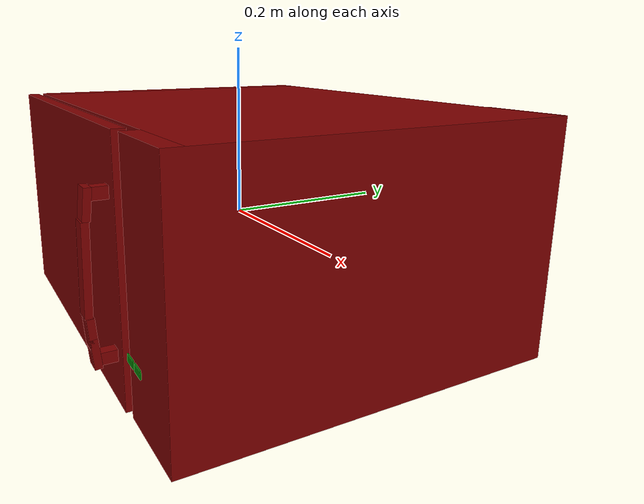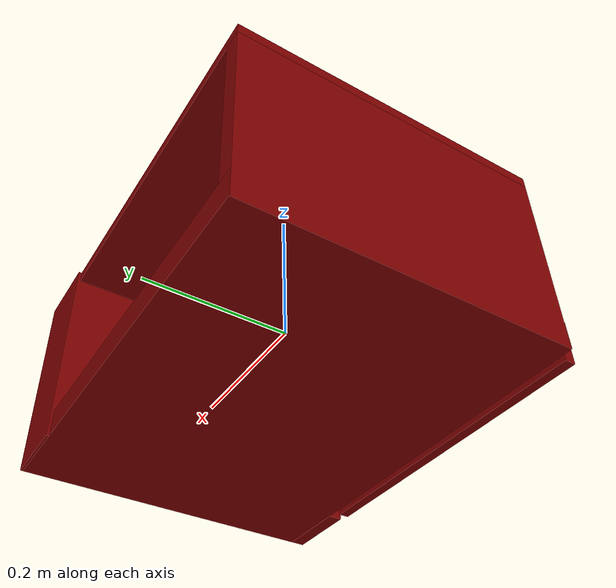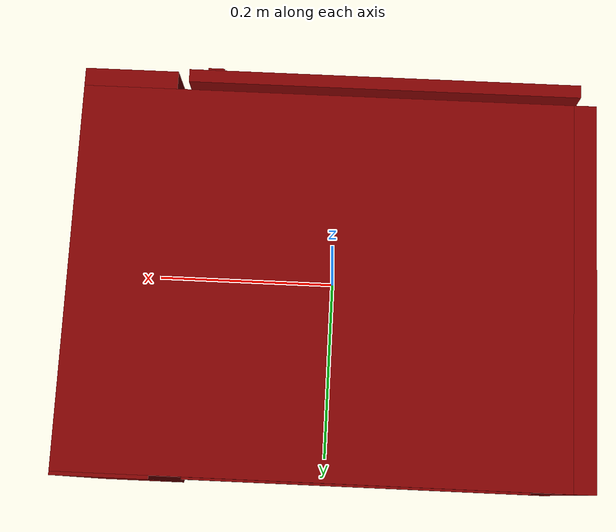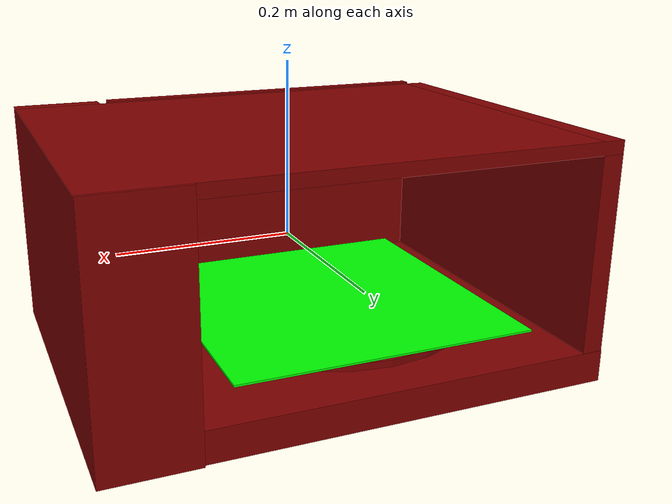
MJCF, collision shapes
<mujoco model="model">
  <compiler angle="radian"/>
  <asset>
    <mesh file="visuals/door.obj" name="door_vis"/>
    <mesh file="visuals/door_Clear.obj" name="door_Clear_vis"/>
    <mesh file="visuals/Body001.obj" name="Body001_vis"/>
    <mesh file="visuals/Disc001.obj" name="Disc001_vis"/>
    <texture file="visuals/T_BC001.png" name="Body001_material" type="2d"/>
    <material name="Body001_material" rgba="1 1 1 1.0" texture="Body001_material" shininess="0.5" specular="0.3103448502657381"/>
    <texture file="visuals/T_BC001.png" name="door_material" type="2d"/>
    <material name="door_material" rgba="1 1 1 1.0" texture="door_material" shininess="0.5" specular="0.3103448502657381"/>
    <texture file="visuals/T_BC001.png" name="door_Clear_material" type="2d"/>
    <material name="door_Clear_material" rgba="1 1 1 0.8999999761581421" texture="door_Clear_material" shininess="0.5" specular="0.3103448502657381"/>
    <texture file="visuals/T_BC001.png" name="Disc001_material" type="2d"/>
    <material name="Disc001_material" rgba="1 1 1 1.0" texture="Disc001_material" shininess="0.5" specular="0.3103448502657381"/>
  </asset>
  <default>
    <default class="visual">
      <geom conaffinity="0" contype="0" group="1" type="mesh"/>
    </default>
    <default class="collision">
      <geom group="0" rgba="0.5 0 0 0.5"/>
    </default>
    <default class="spawn">
      <geom group="0" rgba="1 1 1 0.5" contype="0" conaffinity="0"/>
      <site group="0" rgba="1 1 1 0.5"/>
    </default>
    <default class="region">
      <geom group="1" conaffinity="0" contype="0" rgba="0 1 0 0"/>
    </default>
  </default>
  <worldbody>
    <body>
      <body name="object">
        <geom class="collision" type="box" pos="-0.044555 0.007470 -0.085425" size="0.17360438406467438 0.17360438406467438 0.0012126457877457142" quat="1.0 0.0 0.0 0.0" name="tray" rgba="0 1 0 0.5"/>
        <geom class="collision" type="box" pos="0.205703 -0.203207 -0.070399" size="0.008139848709106445 0.0006778096430934966 0.004350351169705391" quat="1.0 0.0 0.0 0.0" name="start_button" rgba="0.0 0.5 0 0.5"/>
        <geom class="collision" type="box" pos="0.185429 -0.203207 -0.070399" size="0.008139855228364468 0.0006778101669624448 0.004350353963673115" quat="1.0 0.0 0.0 0.0" name="stop_button" rgba="0.0 0.5 0 0.5"/>
        <geom mesh="Body001_vis" type="mesh" solimp="0.998 0.998 0.001" solref="0.001 1" density="100" friction="0.95 0.3 0.1" class="visual" material="Body001_material"/>
        <geom class="collision" type="box" pos="-0.000000 0.023581 0.127022" size="0.2749999165534973 0.20484931766986847 0.007325433660298586" quat="1.0 0.0 0.0 0.0"/>
        <geom class="collision" type="box" pos="-0.263102 0.023581 0.000041" size="0.011897772550582886 0.20481982827186584 0.1343069076538086" quat="1.0 0.0 0.0 0.0"/>
        <geom class="collision" type="box" pos="0.224919 0.015831 0.000041" size="0.0500812828540802 0.21658842265605927 0.13430456817150116" quat="1.0 0.0 0.0 0.0"/>
        <geom class="collision" type="box" pos="0.000001 0.023581 -0.116348" size="0.27499890327453613 0.2054922878742218 0.017943687736988068" quat="1.0 0.0 0.0 0.0"/>
        <body name="door">
          <joint axis="0.0 0.0 1.0" pos="-0.266562 -0.196469 -0.000288" limited="true" name="microjoint" range="-1.5707963267948966 0.0" type="hinge" damping="1" frictionloss="1" armature=".01" stiffness="0.05"/>
          <geom mesh="door_vis" type="mesh" solimp="0.998 0.998 0.001" solref="0.001 1" density="100" friction="0.95 0.3 0.1" class="visual" material="door_material"/>
          <geom class="collision" type="box" pos="-0.047625 -0.197040 0.000000" size="0.21068401634693146 0.0069199115969240665 0.13496404886245728" quat="1.0 0.0 0.0 0.0"/>
          <geom class="collision" type="box" pos="0.140974 -0.211414 0.076833" size="0.006189699750393629 0.009637584909796715 0.006189699750393629" quat="1.0 0.0 0.0 0.0"/>
          <geom class="collision" type="box" pos="0.140974 -0.211414 -0.082512" size="0.006189699750393629 0.009637570939958096 0.006189699750393629" quat="1.0 0.0 0.0 0.0"/>
          <geom class="collision" type="box" pos="0.140974 -0.224718 0.068126" size="0.009110698476433754 0.015443959273397923 0.00388891133479774" quat="0.7403061985969543 0.6722698211669922 1.4927387360915643e-16 -6.159860215893984e-24"/>
          <geom class="collision" type="box" pos="0.140974 -0.228486 0.007083" size="0.009110698476433754 0.04562361165881157 0.0038889118004590273" quat="0.7146035432815552 0.6995297074317932 1.5532679752001526e-16 -4.395611061121095e-24" name="door_handle"/>
          <geom class="collision" type="box" pos="0.140974 -0.227062 -0.054501" size="0.009110698476433754 0.015443959273397923 0.0038889108691364527" quat="0.6765782833099365 0.7363706827163696 1.6350715055702168e-16 2.5871102608317666e-25"/>
          <geom class="collision" type="box" pos="0.140974 -0.224839 -0.075169" size="0.009110698476433754 0.015443959273397923 0.00388891133479774" quat="0.6696765422821045 0.7426528930664062 1.649020814722515e-16 1.6205716304083617e-23"/>
          <body name="door_Clear">
            <geom mesh="door_Clear_vis" type="mesh" solimp="0.998 0.998 0.001" solref="0.001 1" density="100" friction="0.95 0.3 0.1" class="visual" material="door_Clear_material"/>
            <geom class="collision" type="box" pos="-0.059091 -0.190893 -0.012702" size="0.1692383736371994 0.00038382294587790966 0.05422225967049599" quat="1.0 0.0 0.0 0.0"/>
          </body>
        </body>
        <body name="Disc001">
          <joint axis="0.0 0.0 -1.0" pos="-0.044555 0.007470 -0.093313" limited="false" name="Disc001_joint" range="0 360" type="hinge" damping="1" frictionloss="1" armature=".01" stiffness="0.05"/>
          <geom mesh="Disc001_vis" type="mesh" solimp="0.998 0.998 0.001" solref="0.001 1" density="100" friction="0.95 0.3 0.1" class="visual" material="Disc001_material"/>
          <geom class="collision" type="cylinder" pos="-0.044555 0.007470 -0.092844" size="0.17360438406467438 0.003919103182852268" quat="1.0 0.0 0.0 0.0"/>
        </body>
        <geom class="region" name="reg_main" type="box" pos="0.0 0.014658000000000004 -0.0002950000000000036" size="0.275 0.218254 0.13452799999999998"/>
        <geom class="region" name="reg_int" type="box" pos="-0.045742500000000005 0.0055034999999999945 0.010761" size="0.2033215 0.1935405 0.105236"/>
      </body>
    </body>
  </worldbody>
  <actuator>
    <motor name="microjoint_actuator" joint="microjoint" gear="10"/>
    <motor name="Disc001_joint_actuator" joint="Disc001_joint" gear="10"/>
  </actuator>
</mujoco>
